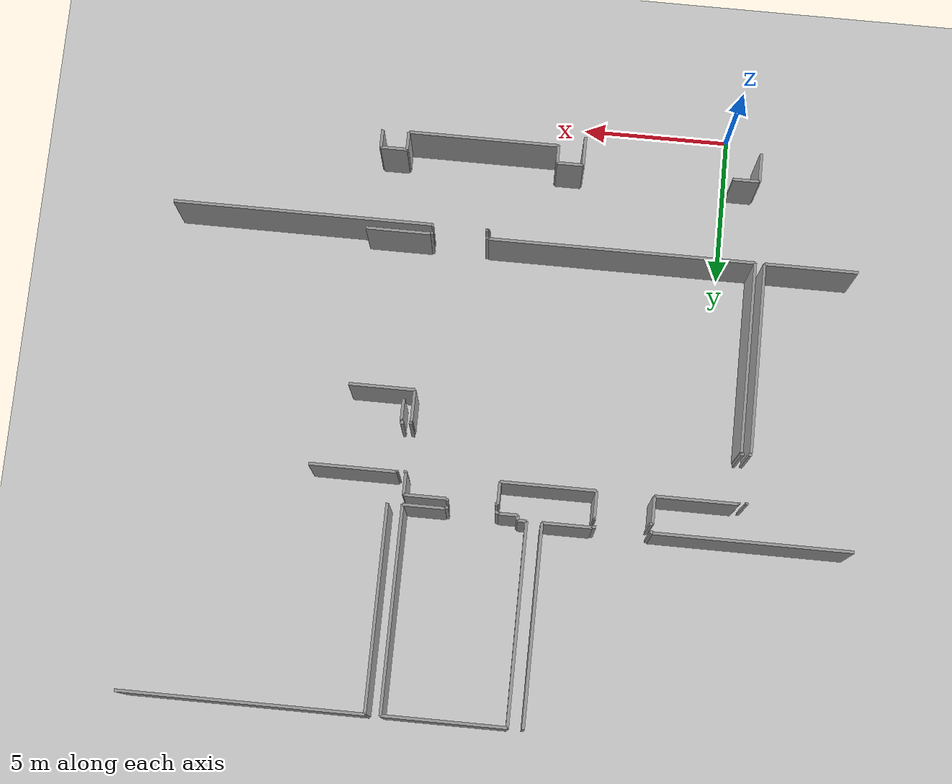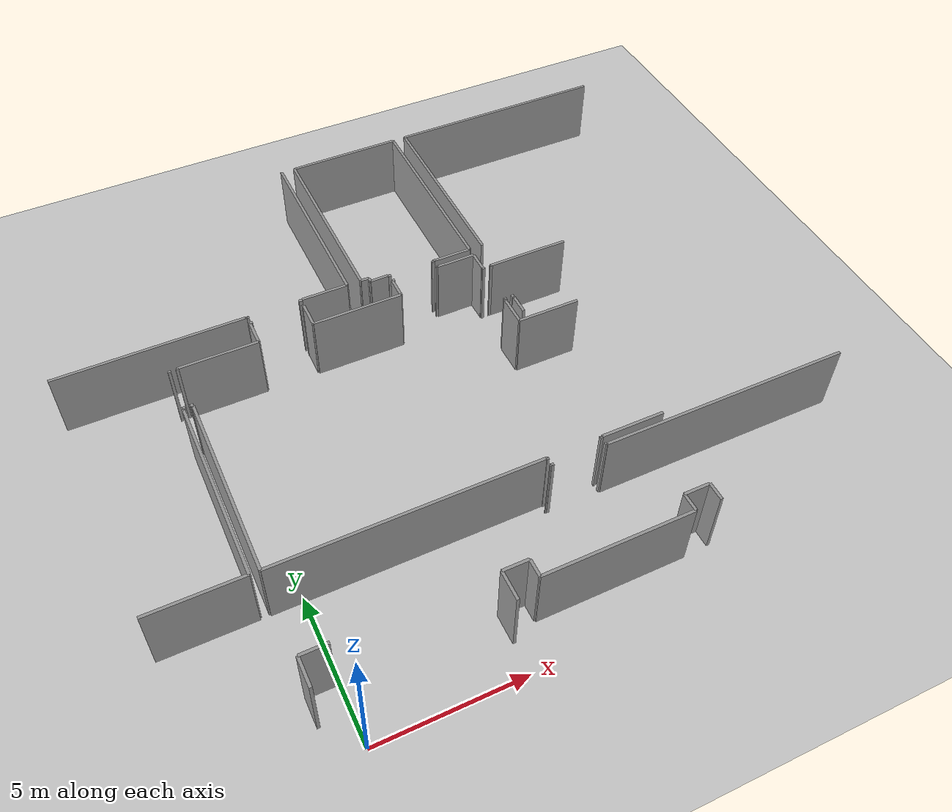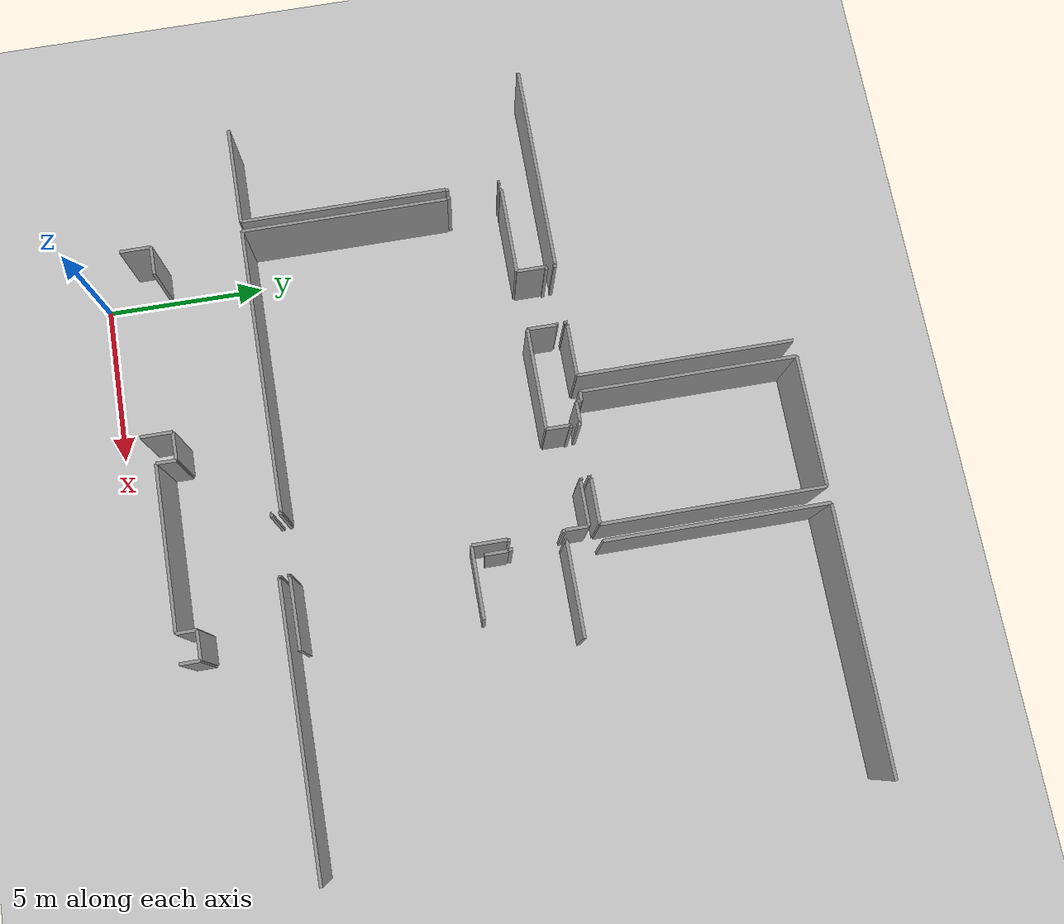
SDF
<sdf version="1.6">
 <world name="default">
  <model name="ground_plane">
   <static>1</static>
   <link name="link">
    <collision name="collision">
     <geometry><plane><normal>0 0 1</normal><size>100 100</size></plane></geometry>
     <surface><friction><ode><mu>100</mu><mu2>50</mu2></ode></friction></surface>
    </collision>
    <visual name="visual">
     <cast_shadows>0</cast_shadows>
     <geometry><plane><normal>0 0 1</normal><size>100 100</size></plane></geometry>
     <material>
      <script><uri>file://media/materials/scripts/gazebo.material</uri><name>Gazebo/Grey</name></script>
     </material>
    </visual>
   </link>
  </model>
  <model name="0510032259_A_40_1_101">
   <static>1</static>
   <link name="Wall_61">
    <collision name="Wall_61_Collision">
     <geometry><box><size>0.0381141136563 0.1 2.5</size></box></geometry>
     <pose>0.0190570568281 0 1.25 0 0 0</pose>
    </collision>
    <visual name="Wall_61_Visual">
     <pose>0.0190570568281 0 1.25 0 0 0</pose>
     <geometry><box><size>0.0381141136563 0.1 2.5</size></box></geometry>
     <material>
      <script><uri>file://media/materials/scripts/gazebo.material</uri><name>Gazebo/Grey</name></script>
      <ambient>1 1 1 1</ambient>
     </material>
    </visual>
    <pose>38.1232610436 -16.45538743 0 0 0 1.57079632679</pose>
   </link>
   <link name="Wall_62">
    <collision name="Wall_62_Collision">
     <geometry><box><size>0.101129448235 0.1 2.5</size></box></geometry>
     <pose>0.0505647241173 0 1.25 0 0 0</pose>
    </collision>
    <visual name="Wall_62_Visual">
     <pose>0.0505647241173 0 1.25 0 0 0</pose>
     <geometry><box><size>0.101129448235 0.1 2.5</size></box></geometry>
     <material>
      <script><uri>file://media/materials/scripts/gazebo.material</uri><name>Gazebo/Grey</name></script>
      <ambient>1 1 1 1</ambient>
     </material>
    </visual>
    <pose>38.1232610436 -16.4172733163 0 0 0 0.0</pose>
   </link>
   <link name="Wall_63">
    <collision name="Wall_63_Collision">
     <geometry><box><size>0.0595850643493 0.1 2.5</size></box></geometry>
     <pose>0.0297925321747 0 1.25 0 0 0</pose>
    </collision>
    <visual name="Wall_63_Visual">
     <pose>0.0297925321747 0 1.25 0 0 0</pose>
     <geometry><box><size>0.0595850643493 0.1 2.5</size></box></geometry>
     <material>
      <script><uri>file://media/materials/scripts/gazebo.material</uri><name>Gazebo/Grey</name></script>
      <ambient>1 1 1 1</ambient>
     </material>
    </visual>
    <pose>39.9890739541 -16.4172733163 0 0 0 0.0</pose>
   </link>
   <link name="Wall_64">
    <collision name="Wall_64_Collision">
     <geometry><box><size>0.0255364561497 0.1 2.5</size></box></geometry>
     <pose>0.0127682280749 0 1.25 0 0 0</pose>
    </collision>
    <visual name="Wall_64_Visual">
     <pose>0.0127682280749 0 1.25 0 0 0</pose>
     <geometry><box><size>0.0255364561497 0.1 2.5</size></box></geometry>
     <material>
      <script><uri>file://media/materials/scripts/gazebo.material</uri><name>Gazebo/Grey</name></script>
      <ambient>1 1 1 1</ambient>
     </material>
    </visual>
    <pose>40.0486590184 -16.4172733163 0 0 0 -1.57079632679</pose>
   </link>
   <link name="Wall_65">
    <collision name="Wall_65_Collision">
     <geometry><box><size>8.77628285754 0.1 2.5</size></box></geometry>
     <pose>4.38814142877 0 1.25 0 0 0</pose>
    </collision>
    <visual name="Wall_65_Visual">
     <pose>4.38814142877 0 1.25 0 0 0</pose>
     <geometry><box><size>8.77628285754 0.1 2.5</size></box></geometry>
     <material>
      <script><uri>file://media/materials/scripts/gazebo.material</uri><name>Gazebo/Grey</name></script>
      <ambient>1 1 1 1</ambient>
     </material>
    </visual>
    <pose>40.0486590184 -16.4428097725 0 0 0 0.0</pose>
   </link>
   <link name="Wall_80">
    <collision name="Wall_80_Collision">
     <geometry><box><size>0.618719111687 0.1 2.5</size></box></geometry>
     <pose>0.309359555844 0 1.25 0 0 0</pose>
    </collision>
    <visual name="Wall_80_Visual">
     <pose>0.309359555844 0 1.25 0 0 0</pose>
     <geometry><box><size>0.618719111687 0.1 2.5</size></box></geometry>
     <material>
      <script><uri>file://media/materials/scripts/gazebo.material</uri><name>Gazebo/Grey</name></script>
      <ambient>1 1 1 1</ambient>
     </material>
    </visual>
    <pose>42.0523179733 -19.6128876523 0 0 0 1.57079632679</pose>
   </link>
   <link name="Wall_81">
    <collision name="Wall_81_Collision">
     <geometry><box><size>0.895046435695 0.1 2.5</size></box></geometry>
     <pose>0.447523217848 0 1.25 0 0 0</pose>
    </collision>
    <visual name="Wall_81_Visual">
     <pose>0.447523217848 0 1.25 0 0 0</pose>
     <geometry><box><size>0.895046435695 0.1 2.5</size></box></geometry>
     <material>
      <script><uri>file://media/materials/scripts/gazebo.material</uri><name>Gazebo/Grey</name></script>
      <ambient>1 1 1 1</ambient>
     </material>
    </visual>
    <pose>42.0523179733 -18.9941685406 0 0 0 3.14159265359</pose>
   </link>
   <link name="Wall_82">
    <collision name="Wall_82_Collision">
     <geometry><box><size>0.621005958506 0.1 2.5</size></box></geometry>
     <pose>0.310502979253 0 1.25 0 0 0</pose>
    </collision>
    <visual name="Wall_82_Visual">
     <pose>0.310502979253 0 1.25 0 0 0</pose>
     <geometry><box><size>0.621005958506 0.1 2.5</size></box></geometry>
     <material>
      <script><uri>file://media/materials/scripts/gazebo.material</uri><name>Gazebo/Grey</name></script>
      <ambient>1 1 1 1</ambient>
     </material>
    </visual>
    <pose>41.1572715377 -18.9941685406 0 0 0 -1.57079632679</pose>
   </link>
   <link name="Wall_83">
    <collision name="Wall_83_Collision">
     <geometry><box><size>5.11910660518 0.1 2.5</size></box></geometry>
     <pose>2.55955330259 0 1.25 0 0 0</pose>
    </collision>
    <visual name="Wall_83_Visual">
     <pose>2.55955330259 0 1.25 0 0 0</pose>
     <geometry><box><size>5.11910660518 0.1 2.5</size></box></geometry>
     <material>
      <script><uri>file://media/materials/scripts/gazebo.material</uri><name>Gazebo/Grey</name></script>
      <ambient>1 1 1 1</ambient>
     </material>
    </visual>
    <pose>41.1572715377 -19.6151744991 0 0 0 3.14159265359</pose>
   </link>
   <link name="Wall_84">
    <collision name="Wall_84_Collision">
     <geometry><box><size>0.60728487759 0.1 2.5</size></box></geometry>
     <pose>0.303642438795 0 1.25 0 0 0</pose>
    </collision>
    <visual name="Wall_84_Visual">
     <pose>0.303642438795 0 1.25 0 0 0</pose>
     <geometry><box><size>0.60728487759 0.1 2.5</size></box></geometry>
     <material>
      <script><uri>file://media/materials/scripts/gazebo.material</uri><name>Gazebo/Grey</name></script>
      <ambient>1 1 1 1</ambient>
     </material>
    </visual>
    <pose>36.0381649325 -19.6151744991 0 0 0 1.57079632679</pose>
   </link>
   <link name="Wall_85">
    <collision name="Wall_85_Collision">
     <geometry><box><size>0.884247436826 0.1 2.5</size></box></geometry>
     <pose>0.442123718413 0 1.25 0 0 0</pose>
    </collision>
    <visual name="Wall_85_Visual">
     <pose>0.442123718413 0 1.25 0 0 0</pose>
     <geometry><box><size>0.884247436826 0.1 2.5</size></box></geometry>
     <material>
      <script><uri>file://media/materials/scripts/gazebo.material</uri><name>Gazebo/Grey</name></script>
      <ambient>1 1 1 1</ambient>
     </material>
    </visual>
    <pose>36.0381649325 -19.0078896215 0 0 0 3.14159265359</pose>
   </link>
   <link name="Wall_86">
    <collision name="Wall_86_Collision">
     <geometry><box><size>0.994143131201 0.1 2.5</size></box></geometry>
     <pose>0.497071565601 0 1.25 0 0 0</pose>
    </collision>
    <visual name="Wall_86_Visual">
     <pose>0.497071565601 0 1.25 0 0 0</pose>
     <geometry><box><size>0.994143131201 0.1 2.5</size></box></geometry>
     <material>
      <script><uri>file://media/materials/scripts/gazebo.material</uri><name>Gazebo/Grey</name></script>
      <ambient>1 1 1 1</ambient>
     </material>
    </visual>
    <pose>35.1539174956 -19.0078896215 0 0 0 -1.57079632679</pose>
   </link>
   <link name="Wall_95">
    <collision name="Wall_95_Collision">
     <geometry><box><size>0.904066775927 0.1 2.5</size></box></geometry>
     <pose>0.452033387964 0 1.25 0 0 0</pose>
    </collision>
    <visual name="Wall_95_Visual">
     <pose>0.452033387964 0 1.25 0 0 0</pose>
     <geometry><box><size>0.904066775927 0.1 2.5</size></box></geometry>
     <material>
      <script><uri>file://media/materials/scripts/gazebo.material</uri><name>Gazebo/Grey</name></script>
      <ambient>1 1 1 1</ambient>
     </material>
    </visual>
    <pose>30.0599662055 -18.9969635756 0 0 0 3.14159265359</pose>
   </link>
   <link name="Wall_96">
    <collision name="Wall_96_Collision">
     <geometry><box><size>0.983090038241 0.1 2.5</size></box></geometry>
     <pose>0.491545019121 0 1.25 0 0 0</pose>
    </collision>
    <visual name="Wall_96_Visual">
     <pose>0.491545019121 0 1.25 0 0 0</pose>
     <geometry><box><size>0.983090038241 0.1 2.5</size></box></geometry>
     <material>
      <script><uri>file://media/materials/scripts/gazebo.material</uri><name>Gazebo/Grey</name></script>
      <ambient>1 1 1 1</ambient>
     </material>
    </visual>
    <pose>29.1558994296 -18.9969635756 0 0 0 -1.57079632679</pose>
   </link>
   <link name="Wall_141">
    <collision name="Wall_141_Collision">
     <geometry><box><size>0.0745766157208 0.1 2.5</size></box></geometry>
     <pose>0.0372883078604 0 1.25 0 0 0</pose>
    </collision>
    <visual name="Wall_141_Visual">
     <pose>0.0372883078604 0 1.25 0 0 0</pose>
     <geometry><box><size>0.0745766157208 0.1 2.5</size></box></geometry>
     <material>
      <script><uri>file://media/materials/scripts/gazebo.material</uri><name>Gazebo/Grey</name></script>
      <ambient>1 1 1 1</ambient>
     </material>
    </visual>
    <pose>28.8057577721 -7.93866168642 0 0 0 -1.57079632679</pose>
   </link>
   <link name="Wall_142">
    <collision name="Wall_142_Collision">
     <geometry><box><size>0.0997319307339 0.1 2.5</size></box></geometry>
     <pose>0.049865965367 0 1.25 0 0 0</pose>
    </collision>
    <visual name="Wall_142_Visual">
     <pose>0.049865965367 0 1.25 0 0 0</pose>
     <geometry><box><size>0.0997319307339 0.1 2.5</size></box></geometry>
     <material>
      <script><uri>file://media/materials/scripts/gazebo.material</uri><name>Gazebo/Grey</name></script>
      <ambient>1 1 1 1</ambient>
     </material>
    </visual>
    <pose>28.8057577721 -9.57032689205 0 0 0 -1.57079632679</pose>
   </link>
   <link name="Wall_143">
    <collision name="Wall_143_Collision">
     <geometry><box><size>0.0250282679676 0.1 2.5</size></box></geometry>
     <pose>0.0125141339838 0 1.25 0 0 0</pose>
    </collision>
    <visual name="Wall_143_Visual">
     <pose>0.0125141339838 0 1.25 0 0 0</pose>
     <geometry><box><size>0.0250282679676 0.1 2.5</size></box></geometry>
     <material>
      <script><uri>file://media/materials/scripts/gazebo.material</uri><name>Gazebo/Grey</name></script>
      <ambient>1 1 1 1</ambient>
     </material>
    </visual>
    <pose>28.8057577721 -9.67005882278 0 0 0 3.14159265359</pose>
   </link>
   <link name="Wall_144">
    <collision name="Wall_144_Collision">
     <geometry><box><size>6.46732985224 0.1 2.5</size></box></geometry>
     <pose>3.23366492612 0 1.25 0 0 0</pose>
    </collision>
    <visual name="Wall_144_Visual">
     <pose>3.23366492612 0 1.25 0 0 0</pose>
     <geometry><box><size>6.46732985224 0.1 2.5</size></box></geometry>
     <material>
      <script><uri>file://media/materials/scripts/gazebo.material</uri><name>Gazebo/Grey</name></script>
      <ambient>1 1 1 1</ambient>
     </material>
    </visual>
    <pose>28.7807295041 -9.67005882278 0 0 0 -1.57079632679</pose>
   </link>
   <link name="Wall_145">
    <collision name="Wall_145_Collision">
     <geometry><box><size>3.14543075301 0.1 2.5</size></box></geometry>
     <pose>1.5727153765 0 1.25 0 0 0</pose>
    </collision>
    <visual name="Wall_145_Visual">
     <pose>1.5727153765 0 1.25 0 0 0</pose>
     <geometry><box><size>3.14543075301 0.1 2.5</size></box></geometry>
     <material>
      <script><uri>file://media/materials/scripts/gazebo.material</uri><name>Gazebo/Grey</name></script>
      <ambient>1 1 1 1</ambient>
     </material>
    </visual>
    <pose>28.7807295041 -16.137388675 0 0 0 3.14159265359</pose>
   </link>
   <link name="Wall_147">
    <collision name="Wall_147_Collision">
     <geometry><box><size>6.47190354588 0.1 2.5</size></box></geometry>
     <pose>3.23595177294 0 1.25 0 0 0</pose>
    </collision>
    <visual name="Wall_147_Visual">
     <pose>3.23595177294 0 1.25 0 0 0</pose>
     <geometry><box><size>6.47190354588 0.1 2.5</size></box></geometry>
     <material>
      <script><uri>file://media/materials/scripts/gazebo.material</uri><name>Gazebo/Grey</name></script>
      <ambient>1 1 1 1</ambient>
     </material>
    </visual>
    <pose>29.0993634943 -16.1422164628 0 0 0 1.57079632679</pose>
   </link>
   <link name="Wall_148">
    <collision name="Wall_148_Collision">
     <geometry><box><size>0.0320158554713 0.1 2.5</size></box></geometry>
     <pose>0.0160079277356 0 1.25 0 0 0</pose>
    </collision>
    <visual name="Wall_148_Visual">
     <pose>0.0160079277356 0 1.25 0 0 0</pose>
     <geometry><box><size>0.0320158554713 0.1 2.5</size></box></geometry>
     <material>
      <script><uri>file://media/materials/scripts/gazebo.material</uri><name>Gazebo/Grey</name></script>
      <ambient>1 1 1 1</ambient>
     </material>
    </visual>
    <pose>29.0993634943 -9.67031291687 0 0 0 3.14159265359</pose>
   </link>
   <link name="Wall_149">
    <collision name="Wall_149_Collision">
     <geometry><box><size>0.116248046652 0.1 2.5</size></box></geometry>
     <pose>0.0581240233258 0 1.25 0 0 0</pose>
    </collision>
    <visual name="Wall_149_Visual">
     <pose>0.0581240233258 0 1.25 0 0 0</pose>
     <geometry><box><size>0.116248046652 0.1 2.5</size></box></geometry>
     <material>
      <script><uri>file://media/materials/scripts/gazebo.material</uri><name>Gazebo/Grey</name></script>
      <ambient>1 1 1 1</ambient>
     </material>
    </visual>
    <pose>29.0673476388 -9.67031291687 0 0 0 1.57079632679</pose>
   </link>
   <link name="Wall_150">
    <collision name="Wall_150_Collision">
     <geometry><box><size>0.0505647241173 0.1 2.5</size></box></geometry>
     <pose>0.0252823620587 0 1.25 0 0 0</pose>
    </collision>
    <visual name="Wall_150_Visual">
     <pose>0.0252823620587 0 1.25 0 0 0</pose>
     <geometry><box><size>0.0505647241173 0.1 2.5</size></box></geometry>
     <material>
      <script><uri>file://media/materials/scripts/gazebo.material</uri><name>Gazebo/Grey</name></script>
      <ambient>1 1 1 1</ambient>
     </material>
    </visual>
    <pose>29.0673476388 -7.9916403044 0 0 0 1.57079632679</pose>
   </link>
   <link name="Wall_151">
    <collision name="Wall_151_Collision">
     <geometry><box><size>2.76289209894 0.1 2.5</size></box></geometry>
     <pose>1.38144604947 0 1.25 0 0 0</pose>
    </collision>
    <visual name="Wall_151_Visual">
     <pose>1.38144604947 0 1.25 0 0 0</pose>
     <geometry><box><size>2.76289209894 0.1 2.5</size></box></geometry>
     <material>
      <script><uri>file://media/materials/scripts/gazebo.material</uri><name>Gazebo/Grey</name></script>
      <ambient>1 1 1 1</ambient>
     </material>
    </visual>
    <pose>29.0673476388 -7.94107558029 0 0 0 0.0</pose>
   </link>
   <link name="Wall_152">
    <collision name="Wall_152_Collision">
     <geometry><box><size>0.925791820711 0.1 2.5</size></box></geometry>
     <pose>0.462895910356 0 1.25 0 0 0</pose>
    </collision>
    <visual name="Wall_152_Visual">
     <pose>0.462895910356 0 1.25 0 0 0</pose>
     <geometry><box><size>0.925791820711 0.1 2.5</size></box></geometry>
     <material>
      <script><uri>file://media/materials/scripts/gazebo.material</uri><name>Gazebo/Grey</name></script>
      <ambient>1 1 1 1</ambient>
     </material>
    </visual>
    <pose>31.8302397378 -7.94107558029 0 0 0 1.57079632679</pose>
   </link>
   <link name="Wall_153">
    <collision name="Wall_153_Collision">
     <geometry><box><size>0.0973180368691 0.1 2.5</size></box></geometry>
     <pose>0.0486590184345 0 1.25 0 0 0</pose>
    </collision>
    <visual name="Wall_153_Visual">
     <pose>0.0486590184345 0 1.25 0 0 0</pose>
     <geometry><box><size>0.0973180368691 0.1 2.5</size></box></geometry>
     <material>
      <script><uri>file://media/materials/scripts/gazebo.material</uri><name>Gazebo/Grey</name></script>
      <ambient>1 1 1 1</ambient>
     </material>
    </visual>
    <pose>31.8302397378 -7.01528375958 0 0 0 0.0</pose>
   </link>
   <link name="Wall_154">
    <collision name="Wall_154_Collision">
     <geometry><box><size>0.0522163357091 0.1 2.5</size></box></geometry>
     <pose>0.0261081678546 0 1.25 0 0 0</pose>
    </collision>
    <visual name="Wall_154_Visual">
     <pose>0.0261081678546 0 1.25 0 0 0</pose>
     <geometry><box><size>0.0522163357091 0.1 2.5</size></box></geometry>
     <material>
      <script><uri>file://media/materials/scripts/gazebo.material</uri><name>Gazebo/Grey</name></script>
      <ambient>1 1 1 1</ambient>
     </material>
    </visual>
    <pose>33.6890650608 -7.01528375958 0 0 0 0.0</pose>
   </link>
   <link name="Wall_155">
    <collision name="Wall_155_Collision">
     <geometry><box><size>0.921472221164 0.1 2.5</size></box></geometry>
     <pose>0.460736110582 0 1.25 0 0 0</pose>
    </collision>
    <visual name="Wall_155_Visual">
     <pose>0.460736110582 0 1.25 0 0 0</pose>
     <geometry><box><size>0.921472221164 0.1 2.5</size></box></geometry>
     <material>
      <script><uri>file://media/materials/scripts/gazebo.material</uri><name>Gazebo/Grey</name></script>
      <ambient>1 1 1 1</ambient>
     </material>
    </visual>
    <pose>33.7412813965 -7.01528375958 0 0 0 -1.57079632679</pose>
   </link>
   <link name="Wall_156">
    <collision name="Wall_156_Collision">
     <geometry><box><size>3.19218406576 0.1 2.5</size></box></geometry>
     <pose>1.59609203288 0 1.25 0 0 0</pose>
    </collision>
    <visual name="Wall_156_Visual">
     <pose>1.59609203288 0 1.25 0 0 0</pose>
     <geometry><box><size>3.19218406576 0.1 2.5</size></box></geometry>
     <material>
      <script><uri>file://media/materials/scripts/gazebo.material</uri><name>Gazebo/Grey</name></script>
      <ambient>1 1 1 1</ambient>
     </material>
    </visual>
    <pose>33.7412813965 -7.93675598074 0 0 0 0.0</pose>
   </link>
   <link name="Wall_157">
    <collision name="Wall_157_Collision">
     <geometry><box><size>0.754405356303 0.1 2.5</size></box></geometry>
     <pose>0.377202678152 0 1.25 0 0 0</pose>
    </collision>
    <visual name="Wall_157_Visual">
     <pose>0.377202678152 0 1.25 0 0 0</pose>
     <geometry><box><size>0.754405356303 0.1 2.5</size></box></geometry>
     <material>
      <script><uri>file://media/materials/scripts/gazebo.material</uri><name>Gazebo/Grey</name></script>
      <ambient>1 1 1 1</ambient>
     </material>
    </visual>
    <pose>36.9334654623 -7.93675598074 0 0 0 1.57079632679</pose>
   </link>
   <link name="Wall_158">
    <collision name="Wall_158_Collision">
     <geometry><box><size>0.0879165555005 0.1 2.5</size></box></geometry>
     <pose>0.0439582777502 0 1.25 0 0 0</pose>
    </collision>
    <visual name="Wall_158_Visual">
     <pose>0.0439582777502 0 1.25 0 0 0</pose>
     <geometry><box><size>0.0879165555005 0.1 2.5</size></box></geometry>
     <material>
      <script><uri>file://media/materials/scripts/gazebo.material</uri><name>Gazebo/Grey</name></script>
      <ambient>1 1 1 1</ambient>
     </material>
    </visual>
    <pose>36.9334654623 -7.18235062444 0 0 0 0.0</pose>
   </link>
   <link name="Wall_159">
    <collision name="Wall_159_Collision">
     <geometry><box><size>0.0691135927634 0.1 2.5</size></box></geometry>
     <pose>0.0345567963817 0 1.25 0 0 0</pose>
    </collision>
    <visual name="Wall_159_Visual">
     <pose>0.0345567963817 0 1.25 0 0 0</pose>
     <geometry><box><size>0.0691135927634 0.1 2.5</size></box></geometry>
     <material>
      <script><uri>file://media/materials/scripts/gazebo.material</uri><name>Gazebo/Grey</name></script>
      <ambient>1 1 1 1</ambient>
     </material>
    </visual>
    <pose>38.5727534906 -7.18235062444 0 0 0 0.0</pose>
   </link>
   <link name="Wall_160">
    <collision name="Wall_160_Collision">
     <geometry><box><size>0.0276962559236 0.1 2.5</size></box></geometry>
     <pose>0.0138481279618 0 1.25 0 0 0</pose>
    </collision>
    <visual name="Wall_160_Visual">
     <pose>0.0138481279618 0 1.25 0 0 0</pose>
     <geometry><box><size>0.0276962559236 0.1 2.5</size></box></geometry>
     <material>
      <script><uri>file://media/materials/scripts/gazebo.material</uri><name>Gazebo/Grey</name></script>
      <ambient>1 1 1 1</ambient>
     </material>
    </visual>
    <pose>38.6418670834 -7.18235062444 0 0 0 -1.57079632679</pose>
   </link>
   <link name="Wall_161">
    <collision name="Wall_161_Collision">
     <geometry><box><size>1.40374280596 0.1 2.5</size></box></geometry>
     <pose>0.701871402981 0 1.25 0 0 0</pose>
    </collision>
    <visual name="Wall_161_Visual">
     <pose>0.701871402981 0 1.25 0 0 0</pose>
     <geometry><box><size>1.40374280596 0.1 2.5</size></box></geometry>
     <material>
      <script><uri>file://media/materials/scripts/gazebo.material</uri><name>Gazebo/Grey</name></script>
      <ambient>1 1 1 1</ambient>
     </material>
    </visual>
    <pose>38.6418670834 -7.21004688036 0 0 0 0.0</pose>
   </link>
   <link name="Wall_162">
    <collision name="Wall_162_Collision">
     <geometry><box><size>0.721246077422 0.1 2.5</size></box></geometry>
     <pose>0.360623038711 0 1.25 0 0 0</pose>
    </collision>
    <visual name="Wall_162_Visual">
     <pose>0.360623038711 0 1.25 0 0 0</pose>
     <geometry><box><size>0.721246077422 0.1 2.5</size></box></geometry>
     <material>
      <script><uri>file://media/materials/scripts/gazebo.material</uri><name>Gazebo/Grey</name></script>
      <ambient>1 1 1 1</ambient>
     </material>
    </visual>
    <pose>40.0456098893 -7.21004688036 0 0 0 -1.57079632679</pose>
   </link>
   <link name="Wall_163">
    <collision name="Wall_163_Collision">
     <geometry><box><size>0.0190570568281 0.1 2.5</size></box></geometry>
     <pose>0.00952852841407 0 1.25 0 0 0</pose>
    </collision>
    <visual name="Wall_163_Visual">
     <pose>0.00952852841407 0 1.25 0 0 0</pose>
     <geometry><box><size>0.0190570568281 0.1 2.5</size></box></geometry>
     <material>
      <script><uri>file://media/materials/scripts/gazebo.material</uri><name>Gazebo/Grey</name></script>
      <ambient>1 1 1 1</ambient>
     </material>
    </visual>
    <pose>40.0456098893 -7.93129295778 0 0 0 0.0</pose>
   </link>
   <link name="Wall_164">
    <collision name="Wall_164_Collision">
     <geometry><box><size>0.078769168223 0.1 2.5</size></box></geometry>
     <pose>0.0393845841115 0 1.25 0 0 0</pose>
    </collision>
    <visual name="Wall_164_Visual">
     <pose>0.0393845841115 0 1.25 0 0 0</pose>
     <geometry><box><size>0.078769168223 0.1 2.5</size></box></geometry>
     <material>
      <script><uri>file://media/materials/scripts/gazebo.material</uri><name>Gazebo/Grey</name></script>
      <ambient>1 1 1 1</ambient>
     </material>
    </visual>
    <pose>40.0646669462 -7.93129295778 0 0 0 -1.57079632679</pose>
   </link>
   <link name="Wall_165">
    <collision name="Wall_165_Collision">
     <geometry><box><size>0.0973180368691 0.1 2.5</size></box></geometry>
     <pose>0.0486590184345 0 1.25 0 0 0</pose>
    </collision>
    <visual name="Wall_165_Visual">
     <pose>0.0486590184345 0 1.25 0 0 0</pose>
     <geometry><box><size>0.0973180368691 0.1 2.5</size></box></geometry>
     <material>
      <script><uri>file://media/materials/scripts/gazebo.material</uri><name>Gazebo/Grey</name></script>
      <ambient>1 1 1 1</ambient>
     </material>
    </visual>
    <pose>40.0646669462 -9.57515467978 0 0 0 -1.57079632679</pose>
   </link>
   <link name="Wall_166">
    <collision name="Wall_166_Collision">
     <geometry><box><size>0.0235037034214 0.1 2.5</size></box></geometry>
     <pose>0.0117518517107 0 1.25 0 0 0</pose>
    </collision>
    <visual name="Wall_166_Visual">
     <pose>0.0117518517107 0 1.25 0 0 0</pose>
     <geometry><box><size>0.0235037034214 0.1 2.5</size></box></geometry>
     <material>
      <script><uri>file://media/materials/scripts/gazebo.material</uri><name>Gazebo/Grey</name></script>
      <ambient>1 1 1 1</ambient>
     </material>
    </visual>
    <pose>40.0646669462 -9.67247271665 0 0 0 3.14159265359</pose>
   </link>
   <link name="Wall_167">
    <collision name="Wall_167_Collision">
     <geometry><box><size>1.06109692419 0.1 2.5</size></box></geometry>
     <pose>0.530548462096 0 1.25 0 0 0</pose>
    </collision>
    <visual name="Wall_167_Visual">
     <pose>0.530548462096 0 1.25 0 0 0</pose>
     <geometry><box><size>1.06109692419 0.1 2.5</size></box></geometry>
     <material>
      <script><uri>file://media/materials/scripts/gazebo.material</uri><name>Gazebo/Grey</name></script>
      <ambient>1 1 1 1</ambient>
     </material>
    </visual>
    <pose>40.0411632427 -9.67247271665 0 0 0 -1.57079632679</pose>
   </link>
   <link name="Wall_168">
    <collision name="Wall_168_Collision">
     <geometry><box><size>2.20845879229 0.1 2.5</size></box></geometry>
     <pose>1.10422939615 0 1.25 0 0 0</pose>
    </collision>
    <visual name="Wall_168_Visual">
     <pose>1.10422939615 0 1.25 0 0 0</pose>
     <geometry><box><size>2.20845879229 0.1 2.5</size></box></geometry>
     <material>
      <script><uri>file://media/materials/scripts/gazebo.material</uri><name>Gazebo/Grey</name></script>
      <ambient>1 1 1 1</ambient>
     </material>
    </visual>
    <pose>40.0411632427 -10.7335696408 0 0 0 0.0</pose>
   </link>
   <link name="Wall_170">
    <collision name="Wall_170_Collision">
     <geometry><box><size>2.18711488864 0.1 2.5</size></box></geometry>
     <pose>1.09355744432 0 1.25 0 0 0</pose>
    </collision>
    <visual name="Wall_170_Visual">
     <pose>1.09355744432 0 1.25 0 0 0</pose>
     <geometry><box><size>2.18711488864 0.1 2.5</size></box></geometry>
     <material>
      <script><uri>file://media/materials/scripts/gazebo.material</uri><name>Gazebo/Grey</name></script>
      <ambient>1 1 1 1</ambient>
     </material>
    </visual>
    <pose>42.249622035 -16.1284953818 0 0 0 3.14159265359</pose>
   </link>
   <link name="Wall_171">
    <collision name="Wall_171_Collision">
     <geometry><box><size>0.0266798795594 0.1 2.5</size></box></geometry>
     <pose>0.0133399397797 0 1.25 0 0 0</pose>
    </collision>
    <visual name="Wall_171_Visual">
     <pose>0.0133399397797 0 1.25 0 0 0</pose>
     <geometry><box><size>0.0266798795594 0.1 2.5</size></box></geometry>
     <material>
      <script><uri>file://media/materials/scripts/gazebo.material</uri><name>Gazebo/Grey</name></script>
      <ambient>1 1 1 1</ambient>
     </material>
    </visual>
    <pose>40.0625071464 -16.1284953818 0 0 0 -1.57079632679</pose>
   </link>
   <link name="Wall_172">
    <collision name="Wall_172_Collision">
     <geometry><box><size>0.0879165555005 0.1 2.5</size></box></geometry>
     <pose>0.0439582777502 0 1.25 0 0 0</pose>
    </collision>
    <visual name="Wall_172_Visual">
     <pose>0.0439582777502 0 1.25 0 0 0</pose>
     <geometry><box><size>0.0879165555005 0.1 2.5</size></box></geometry>
     <material>
      <script><uri>file://media/materials/scripts/gazebo.material</uri><name>Gazebo/Grey</name></script>
      <ambient>1 1 1 1</ambient>
     </material>
    </visual>
    <pose>40.0625071464 -16.1551752614 0 0 0 3.14159265359</pose>
   </link>
   <link name="Wall_173">
    <collision name="Wall_173_Collision">
     <geometry><box><size>0.0866460850453 0.1 2.5</size></box></geometry>
     <pose>0.0433230425227 0 1.25 0 0 0</pose>
    </collision>
    <visual name="Wall_173_Visual">
     <pose>0.0433230425227 0 1.25 0 0 0</pose>
     <geometry><box><size>0.0866460850453 0.1 2.5</size></box></geometry>
     <material>
      <script><uri>file://media/materials/scripts/gazebo.material</uri><name>Gazebo/Grey</name></script>
      <ambient>1 1 1 1</ambient>
     </material>
    </visual>
    <pose>38.1955508125 -16.1551752614 0 0 0 3.14159265359</pose>
   </link>
   <link name="Wall_174">
    <collision name="Wall_174_Collision">
     <geometry><box><size>0.0232496093303 0.1 2.5</size></box></geometry>
     <pose>0.0116248046652 0 1.25 0 0 0</pose>
    </collision>
    <visual name="Wall_174_Visual">
     <pose>0.0116248046652 0 1.25 0 0 0</pose>
     <geometry><box><size>0.0232496093303 0.1 2.5</size></box></geometry>
     <material>
      <script><uri>file://media/materials/scripts/gazebo.material</uri><name>Gazebo/Grey</name></script>
      <ambient>1 1 1 1</ambient>
     </material>
    </visual>
    <pose>38.1089047274 -16.1551752614 0 0 0 1.57079632679</pose>
   </link>
   <link name="Wall_175">
    <collision name="Wall_175_Collision">
     <geometry><box><size>9.00954711026 0.1 2.5</size></box></geometry>
     <pose>4.50477355513 0 1.25 0 0 0</pose>
    </collision>
    <visual name="Wall_175_Visual">
     <pose>4.50477355513 0 1.25 0 0 0</pose>
     <geometry><box><size>9.00954711026 0.1 2.5</size></box></geometry>
     <material>
      <script><uri>file://media/materials/scripts/gazebo.material</uri><name>Gazebo/Grey</name></script>
      <ambient>1 1 1 1</ambient>
     </material>
    </visual>
    <pose>38.1089047274 -16.1319256521 0 0 0 -3.14045044158</pose>
   </link>
   <link name="Wall_178">
    <collision name="Wall_178_Collision">
     <geometry><box><size>6.71278474419 0.1 2.5</size></box></geometry>
     <pose>3.3563923721 0 1.25 0 0 0</pose>
    </collision>
    <visual name="Wall_178_Visual">
     <pose>3.3563923721 0 1.25 0 0 0</pose>
     <geometry><box><size>6.71278474419 0.1 2.5</size></box></geometry>
     <material>
      <script><uri>file://media/materials/scripts/gazebo.material</uri><name>Gazebo/Grey</name></script>
      <ambient>1 1 1 1</ambient>
     </material>
    </visual>
    <pose>35.4341832781 -0.00165161159178 0 0 0 -1.57079632679</pose>
   </link>
   <link name="Wall_179">
    <collision name="Wall_179_Collision">
     <geometry><box><size>1.65148454473 0.1 2.5</size></box></geometry>
     <pose>0.825742272363 0 1.25 0 0 0</pose>
    </collision>
    <visual name="Wall_179_Visual">
     <pose>0.825742272363 0 1.25 0 0 0</pose>
     <geometry><box><size>1.65148454473 0.1 2.5</size></box></geometry>
     <material>
      <script><uri>file://media/materials/scripts/gazebo.material</uri><name>Gazebo/Grey</name></script>
      <ambient>1 1 1 1</ambient>
     </material>
    </visual>
    <pose>35.4341832781 -6.71443635578 0 0 0 3.14159265359</pose>
   </link>
   <link name="Wall_180">
    <collision name="Wall_180_Collision">
     <geometry><box><size>0.0282044441056 0.1 2.5</size></box></geometry>
     <pose>0.0141022220528 0 1.25 0 0 0</pose>
    </collision>
    <visual name="Wall_180_Visual">
     <pose>0.0141022220528 0 1.25 0 0 0</pose>
     <geometry><box><size>0.0282044441056 0.1 2.5</size></box></geometry>
     <material>
      <script><uri>file://media/materials/scripts/gazebo.material</uri><name>Gazebo/Grey</name></script>
      <ambient>1 1 1 1</ambient>
     </material>
    </visual>
    <pose>33.7826987333 -6.71443635578 0 0 0 -1.57079632679</pose>
   </link>
   <link name="Wall_181">
    <collision name="Wall_181_Collision">
     <geometry><box><size>0.120186505063 0.1 2.5</size></box></geometry>
     <pose>0.0600932525314 0 1.25 0 0 0</pose>
    </collision>
    <visual name="Wall_181_Visual">
     <pose>0.0600932525314 0 1.25 0 0 0</pose>
     <geometry><box><size>0.120186505063 0.1 2.5</size></box></geometry>
     <material>
      <script><uri>file://media/materials/scripts/gazebo.material</uri><name>Gazebo/Grey</name></script>
      <ambient>1 1 1 1</ambient>
     </material>
    </visual>
    <pose>33.7826987333 -6.74264079989 0 0 0 3.14159265359</pose>
   </link>
   <link name="Wall_182">
    <collision name="Wall_182_Collision">
     <geometry><box><size>0.0903304493654 0.1 2.5</size></box></geometry>
     <pose>0.0451652246827 0 1.25 0 0 0</pose>
    </collision>
    <visual name="Wall_182_Visual">
     <pose>0.0451652246827 0 1.25 0 0 0</pose>
     <geometry><box><size>0.0903304493654 0.1 2.5</size></box></geometry>
     <material>
      <script><uri>file://media/materials/scripts/gazebo.material</uri><name>Gazebo/Grey</name></script>
      <ambient>1 1 1 1</ambient>
     </material>
    </visual>
    <pose>31.8963042014 -6.74264079989 0 0 0 3.14159265359</pose>
   </link>
   <link name="Wall_183">
    <collision name="Wall_183_Collision">
     <geometry><box><size>0.0218520918296 0.1 2.5</size></box></geometry>
     <pose>0.0109260459148 0 1.25 0 0 0</pose>
    </collision>
    <visual name="Wall_183_Visual">
     <pose>0.0109260459148 0 1.25 0 0 0</pose>
     <geometry><box><size>0.0218520918296 0.1 2.5</size></box></geometry>
     <material>
      <script><uri>file://media/materials/scripts/gazebo.material</uri><name>Gazebo/Grey</name></script>
      <ambient>1 1 1 1</ambient>
     </material>
    </visual>
    <pose>31.8059737521 -6.74264079989 0 0 0 1.57079632679</pose>
   </link>
   <link name="Wall_184">
    <collision name="Wall_184_Collision">
     <geometry><box><size>6.61127415604 0.1 2.5</size></box></geometry>
     <pose>3.30563707802 0 1.25 0 0 0</pose>
    </collision>
    <visual name="Wall_184_Visual">
     <pose>3.30563707802 0 1.25 0 0 0</pose>
     <geometry><box><size>6.61127415604 0.1 2.5</size></box></geometry>
     <material>
      <script><uri>file://media/materials/scripts/gazebo.material</uri><name>Gazebo/Grey</name></script>
      <ambient>1 1 1 1</ambient>
     </material>
    </visual>
    <pose>31.8059737521 -6.72078870806 0 0 0 3.14157343686</pose>
   </link>
   <link name="Wall_185">
    <collision name="Wall_185_Collision">
     <geometry><box><size>6.70363735691 0.1 2.5</size></box></geometry>
     <pose>3.35181867846 0 1.25 0 0 0</pose>
    </collision>
    <visual name="Wall_185_Visual">
     <pose>3.35181867846 0 1.25 0 0 0</pose>
     <geometry><box><size>6.70363735691 0.1 2.5</size></box></geometry>
     <material>
      <script><uri>file://media/materials/scripts/gazebo.material</uri><name>Gazebo/Grey</name></script>
      <ambient>1 1 1 1</ambient>
     </material>
    </visual>
    <pose>35.9454205892 -6.71265769715 0 0 0 1.57079632679</pose>
   </link>
   <link name="Wall_186">
    <collision name="Wall_186_Collision">
     <geometry><box><size>4.1001893001 0.1 2.5</size></box></geometry>
     <pose>2.05009465005 0 1.25 0 0 0</pose>
    </collision>
    <visual name="Wall_186_Visual">
     <pose>2.05009465005 0 1.25 0 0 0</pose>
     <geometry><box><size>4.1001893001 0.1 2.5</size></box></geometry>
     <material>
      <script><uri>file://media/materials/scripts/gazebo.material</uri><name>Gazebo/Grey</name></script>
      <ambient>1 1 1 1</ambient>
     </material>
    </visual>
    <pose>35.9454205892 -0.00902034023198 0 0 0 0.0</pose>
   </link>
   <link name="Wall_187">
    <collision name="Wall_187_Collision">
     <geometry><box><size>6.87756476223 0.1 2.5</size></box></geometry>
     <pose>3.43878238112 0 1.25 0 0 0</pose>
    </collision>
    <visual name="Wall_187_Visual">
     <pose>3.43878238112 0 1.25 0 0 0</pose>
     <geometry><box><size>6.87756476223 0.1 2.5</size></box></geometry>
     <material>
      <script><uri>file://media/materials/scripts/gazebo.material</uri><name>Gazebo/Grey</name></script>
      <ambient>1 1 1 1</ambient>
     </material>
    </visual>
    <pose>40.0456098893 -0.00902034023198 0 0 0 -1.57079632679</pose>
   </link>
   <link name="Wall_188">
    <collision name="Wall_188_Collision">
     <geometry><box><size>1.40526737051 0.1 2.5</size></box></geometry>
     <pose>0.702633685254 0 1.25 0 0 0</pose>
    </collision>
    <visual name="Wall_188_Visual">
     <pose>0.702633685254 0 1.25 0 0 0</pose>
     <geometry><box><size>1.40526737051 0.1 2.5</size></box></geometry>
     <material>
      <script><uri>file://media/materials/scripts/gazebo.material</uri><name>Gazebo/Grey</name></script>
      <ambient>1 1 1 1</ambient>
     </material>
    </visual>
    <pose>40.0456098893 -6.88658510246 0 0 0 3.14159265359</pose>
   </link>
   <link name="Wall_189">
    <collision name="Wall_189_Collision">
     <geometry><box><size>0.0323969966079 0.1 2.5</size></box></geometry>
     <pose>0.0161984983039 0 1.25 0 0 0</pose>
    </collision>
    <visual name="Wall_189_Visual">
     <pose>0.0161984983039 0 1.25 0 0 0</pose>
     <geometry><box><size>0.0323969966079 0.1 2.5</size></box></geometry>
     <material>
      <script><uri>file://media/materials/scripts/gazebo.material</uri><name>Gazebo/Grey</name></script>
      <ambient>1 1 1 1</ambient>
     </material>
    </visual>
    <pose>38.6403425188 -6.88658510246 0 0 0 -1.57079632679</pose>
   </link>
   <link name="Wall_190">
    <collision name="Wall_190_Collision">
     <geometry><box><size>0.0969368957325 0.1 2.5</size></box></geometry>
     <pose>0.0484684478662 0 1.25 0 0 0</pose>
    </collision>
    <visual name="Wall_190_Visual">
     <pose>0.0484684478662 0 1.25 0 0 0</pose>
     <geometry><box><size>0.0969368957325 0.1 2.5</size></box></geometry>
     <material>
      <script><uri>file://media/materials/scripts/gazebo.material</uri><name>Gazebo/Grey</name></script>
      <ambient>1 1 1 1</ambient>
     </material>
    </visual>
    <pose>38.6403425188 -6.91898209907 0 0 0 3.14159265359</pose>
   </link>
   <link name="Wall_191">
    <collision name="Wall_191_Collision">
     <geometry><box><size>0.106973612329 0.1 2.5</size></box></geometry>
     <pose>0.0534868061643 0 1.25 0 0 0</pose>
    </collision>
    <visual name="Wall_191_Visual">
     <pose>0.0534868061643 0 1.25 0 0 0</pose>
     <geometry><box><size>0.106973612329 0.1 2.5</size></box></geometry>
     <material>
      <script><uri>file://media/materials/scripts/gazebo.material</uri><name>Gazebo/Grey</name></script>
      <ambient>1 1 1 1</ambient>
     </material>
    </visual>
    <pose>36.9945750912 -6.91898209907 0 0 0 3.14159265359</pose>
   </link>
   <link name="Wall_192">
    <collision name="Wall_192_Collision">
     <geometry><box><size>0.0343027022907 0.1 2.5</size></box></geometry>
     <pose>0.0171513511453 0 1.25 0 0 0</pose>
    </collision>
    <visual name="Wall_192_Visual">
     <pose>0.0171513511453 0 1.25 0 0 0</pose>
     <geometry><box><size>0.0343027022907 0.1 2.5</size></box></geometry>
     <material>
      <script><uri>file://media/materials/scripts/gazebo.material</uri><name>Gazebo/Grey</name></script>
      <ambient>1 1 1 1</ambient>
     </material>
    </visual>
    <pose>36.8876014788 -6.91898209907 0 0 0 1.57079632679</pose>
   </link>
   <link name="Wall_193">
    <collision name="Wall_193_Collision">
     <geometry><box><size>0.643493285564 0.1 2.5</size></box></geometry>
     <pose>0.321746642782 0 1.25 0 0 0</pose>
    </collision>
    <visual name="Wall_193_Visual">
     <pose>0.321746642782 0 1.25 0 0 0</pose>
     <geometry><box><size>0.643493285564 0.1 2.5</size></box></geometry>
     <material>
      <script><uri>file://media/materials/scripts/gazebo.material</uri><name>Gazebo/Grey</name></script>
      <ambient>1 1 1 1</ambient>
     </material>
    </visual>
    <pose>36.8876014788 -6.88467939678 0 0 0 3.14159265359</pose>
   </link>
   <link name="Wall_194">
    <collision name="Wall_194_Collision">
     <geometry><box><size>0.159062900992 0.1 2.5</size></box></geometry>
     <pose>0.0795314504961 0 1.25 0 0 0</pose>
    </collision>
    <visual name="Wall_194_Visual">
     <pose>0.0795314504961 0 1.25 0 0 0</pose>
     <geometry><box><size>0.159062900992 0.1 2.5</size></box></geometry>
     <material>
      <script><uri>file://media/materials/scripts/gazebo.material</uri><name>Gazebo/Grey</name></script>
      <ambient>1 1 1 1</ambient>
     </material>
    </visual>
    <pose>36.2441081933 -6.88467939678 0 0 0 1.57079632679</pose>
   </link>
   <link name="Wall_195">
    <collision name="Wall_195_Collision">
     <geometry><box><size>0.298968585737 0.1 2.5</size></box></geometry>
     <pose>0.149484292868 0 1.25 0 0 0</pose>
    </collision>
    <visual name="Wall_195_Visual">
     <pose>0.149484292868 0 1.25 0 0 0</pose>
     <geometry><box><size>0.298968585737 0.1 2.5</size></box></geometry>
     <material>
      <script><uri>file://media/materials/scripts/gazebo.material</uri><name>Gazebo/Grey</name></script>
      <ambient>1 1 1 1</ambient>
     </material>
    </visual>
    <pose>36.2441081933 -6.72561649579 0 0 0 3.09823405169</pose>
   </link>
   <link name="Wall_196">
    <collision name="Wall_196_Collision">
     <geometry><box><size>0.721246077422 0.1 2.5</size></box></geometry>
     <pose>0.360623038711 0 1.25 0 0 0</pose>
    </collision>
    <visual name="Wall_196_Visual">
     <pose>0.360623038711 0 1.25 0 0 0</pose>
     <geometry><box><size>0.721246077422 0.1 2.5</size></box></geometry>
     <material>
      <script><uri>file://media/materials/scripts/gazebo.material</uri><name>Gazebo/Grey</name></script>
      <ambient>1 1 1 1</ambient>
     </material>
    </visual>
    <pose>40.3759322077 -10.3965138291 0 0 0 1.57079632679</pose>
   </link>
   <link name="Wall_197">
    <collision name="Wall_197_Collision">
     <geometry><box><size>0.0238848445579 0.1 2.5</size></box></geometry>
     <pose>0.011942422279 0 1.25 0 0 0</pose>
    </collision>
    <visual name="Wall_197_Visual">
     <pose>0.011942422279 0 1.25 0 0 0</pose>
     <geometry><box><size>0.0238848445579 0.1 2.5</size></box></geometry>
     <material>
      <script><uri>file://media/materials/scripts/gazebo.material</uri><name>Gazebo/Grey</name></script>
      <ambient>1 1 1 1</ambient>
     </material>
    </visual>
    <pose>40.3759322077 -9.67526775165 0 0 0 3.14159265359</pose>
   </link>
   <link name="Wall_198">
    <collision name="Wall_198_Collision">
     <geometry><box><size>0.124124963474 0.1 2.5</size></box></geometry>
     <pose>0.062062481737 0 1.25 0 0 0</pose>
    </collision>
    <visual name="Wall_198_Visual">
     <pose>0.062062481737 0 1.25 0 0 0</pose>
     <geometry><box><size>0.124124963474 0.1 2.5</size></box></geometry>
     <material>
      <script><uri>file://media/materials/scripts/gazebo.material</uri><name>Gazebo/Grey</name></script>
      <ambient>1 1 1 1</ambient>
     </material>
    </visual>
    <pose>40.3520473631 -9.67526775165 0 0 0 1.57079632679</pose>
   </link>
   <link name="Wall_199">
    <collision name="Wall_199_Collision">
     <geometry><box><size>0.0522163357091 0.1 2.5</size></box></geometry>
     <pose>0.0261081678546 0 1.25 0 0 0</pose>
    </collision>
    <visual name="Wall_199_Visual">
     <pose>0.0261081678546 0 1.25 0 0 0</pose>
     <geometry><box><size>0.0522163357091 0.1 2.5</size></box></geometry>
     <material>
      <script><uri>file://media/materials/scripts/gazebo.material</uri><name>Gazebo/Grey</name></script>
      <ambient>1 1 1 1</ambient>
     </material>
    </visual>
    <pose>40.3520473631 -7.99595990395 0 0 0 1.57079632679</pose>
   </link>
   <link name="Wall_200">
    <collision name="Wall_200_Collision">
     <geometry><box><size>2.92335251744 0.1 2.5</size></box></geometry>
     <pose>1.46167625872 0 1.25 0 0 0</pose>
    </collision>
    <visual name="Wall_200_Visual">
     <pose>1.46167625872 0 1.25 0 0 0</pose>
     <geometry><box><size>2.92335251744 0.1 2.5</size></box></geometry>
     <material>
      <script><uri>file://media/materials/scripts/gazebo.material</uri><name>Gazebo/Grey</name></script>
      <ambient>1 1 1 1</ambient>
     </material>
    </visual>
    <pose>40.3520473631 -7.94374356824 0 0 0 0.0</pose>
   </link>
   <link name="Wall_223">
    <collision name="Wall_223_Collision">
     <geometry><box><size>6.88493349087 0.1 2.5</size></box></geometry>
     <pose>3.44246674544 0 1.25 0 0 0</pose>
    </collision>
    <visual name="Wall_223_Visual">
     <pose>3.44246674544 0 1.25 0 0 0</pose>
     <geometry><box><size>6.88493349087 0.1 2.5</size></box></geometry>
     <material>
      <script><uri>file://media/materials/scripts/gazebo.material</uri><name>Gazebo/Grey</name></script>
      <ambient>1 1 1 1</ambient>
     </material>
    </visual>
    <pose>40.5501137071 -6.88493349087 0 0 0 1.57079632679</pose>
   </link>
   <link name="Wall_224">
    <collision name="Wall_224_Collision">
     <geometry><box><size>8.1166545972 0.1 2.5</size></box></geometry>
     <pose>4.0583272986 0 1.25 0 0 0</pose>
    </collision>
    <visual name="Wall_224_Visual">
     <pose>4.0583272986 0 1.25 0 0 0</pose>
     <geometry><box><size>8.1166545972 0.1 2.5</size></box></geometry>
     <material>
      <script><uri>file://media/materials/scripts/gazebo.material</uri><name>Gazebo/Grey</name></script>
      <ambient>1 1 1 1</ambient>
     </material>
    </visual>
    <pose>40.5501137071 -0.0 0 0 0 0.0</pose>
   </link>
   <pose>-30.15 21.0617302537 0 0 0 0</pose>
  </model>
 </world>
</sdf>
